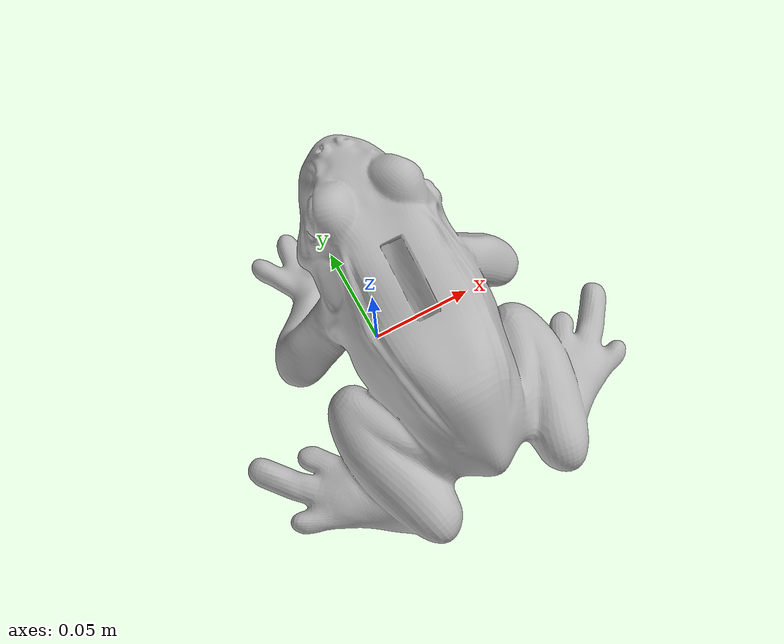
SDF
<?xml version="1.0" ?>
<sdf version="1.6">
  <model name="Frogv1">
    <static>true</static>
    <link name="frog_link">

      <!-- Visual representation -->
      <visual name="frog_visual">
        <geometry>
          <mesh>
            <uri>package://41068_ignition_bringup/models/Animal_Models/frog/meshes/Frog/Frogv1.obj</uri>
            <scale>0.01 0.01 0.01</scale>
          </mesh>
        </geometry>
      </visual>

      <!-- Collision geometry -->
      <collision name="frog_collision">
        <geometry>
          <mesh>
            <uri>package://41068_ignition_bringup/models/Animal_Models/frog/meshes/Frog/Frogv1.obj</uri>
            <scale>0.01 0.01 0.01</scale>
          </mesh>
        </geometry>
      </collision>

    </link>
  </model>
</sdf>
